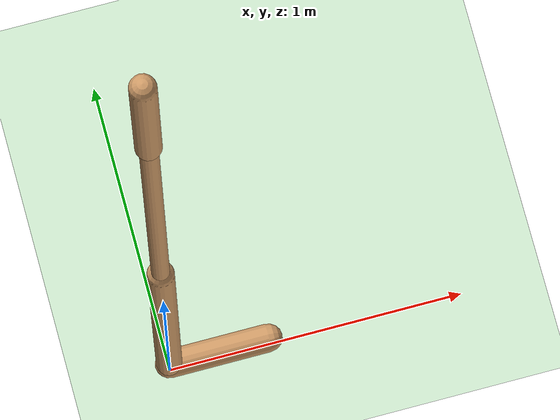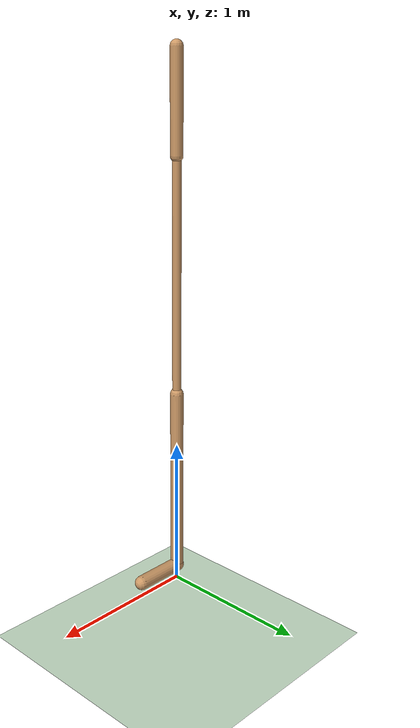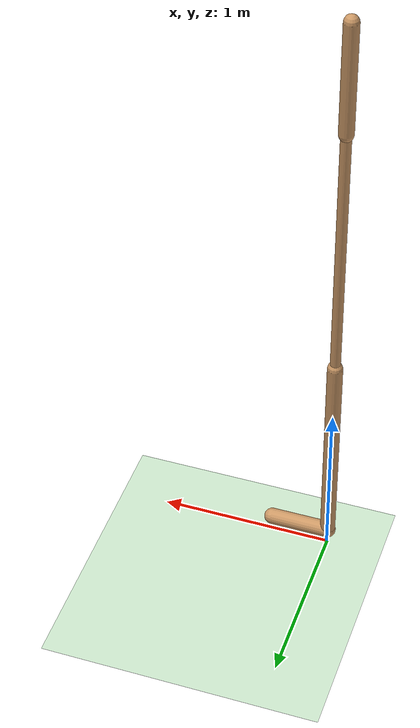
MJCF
<mujoco model="walker2d">
  <compiler angle="degree" inertiafromgeom="true" />
  <default>
    <joint armature="0.01" damping=".1" limited="true" />
    <geom conaffinity="0" condim="3" contype="1" density="1000" friction=".7 .1 .1" rgba="0.8 0.6 .4 1" />
  </default>
  <option integrator="RK4" timestep="0.002" />
  <worldbody>
    <light cutoff="100" diffuse="1 1 1" dir="-0 0 -1.3" directional="true" exponent="1" pos="0 0 1.3" specular=".1 .1 .1" />
    <geom conaffinity="1" condim="3" name="floor" pos="0 0 0" rgba="0.8 0.9 0.8 1" size="40 40 40" type="plane" material="MatPlane" />
    <body name="torso" pos="0 0 3.2203129887580872">
      <camera name="track" mode="trackcom" pos="0 -5 -1.25" xyaxes="1 0 0 0 0 1" />
      <joint armature="0" axis="1 0 0" damping="0" limited="false" name="rootx" pos="0 0 -1.25" stiffness="0" type="slide" />
      <joint armature="0" axis="0 0 1" damping="0" limited="false" name="rootz" pos="0 0 -1.25" ref="1.25" stiffness="0" type="slide" />
      <joint armature="0" axis="0 1 0" damping="0" limited="false" name="rooty" pos="0 0 0" stiffness="0" type="hinge" />
      <geom friction="0.9" name="torso_geom" size="0.04061535745859146 0.31593722105026245" type="capsule" />
      <body name="thigh" pos="0 0 -0.31593722105026245">
        <joint axis="0 -1 0" name="thigh_joint" pos="0 0 0" range="-150 0" type="hinge" />
        <site name="torso_thigh_site" pos="0 0 0" size="0.01" type="sphere" rgba="1 0 0 0.5" />
        <geom friction="0.9" pos="0 0 -0.7682355642318726" name="thigh_geom" size="0.02936618961393833 0.7682355642318726" type="capsule" />
        <body name="leg" pos="0 0 -2.170423448085785">
          <joint axis="0 -1 0" name="leg_joint" pos="0 0 0.6339523196220398" range="-150 0" type="hinge" />
          <site name="thigh_leg_site" pos="0 0 0.25" size="0.01" type="sphere" rgba="1 0 0 0.5" />
          <geom friction="0.9" name="leg_geom" size="0.04366204887628555 0.6339523196220398" type="capsule" />
          <body name="foot" pos="0.33789724111557007 0 -0.7339523196220398">
            <joint axis="0 -1 0" name="foot_joint" pos="-0.33789724111557007 0 0.1" range="-45 45" type="hinge" />
            <site name="leg_foot_site" pos="-0.2 0 0.1" size="0.01" type="sphere" rgba="1 0 0 0.5" />
            <geom friction="0.9" pos="-0.16894862055778503 0 0.1" quat="0.70710678118654757 0 -0.70710678118654746 0" name="foot_geom" size="0.04757080227136612 0.16894862055778503" type="capsule" />
          </body>
        </body>
      </body>

      <body name="thigh_left" pos="0 0 -0.31593722105026245">
        <joint axis="0 -1 0" name="thigh_left_joint" pos="0 0 0" range="-150 0" type="hinge" />
        <site name="torso_thigh_left_site" pos="0 0 0" size="0.01" type="sphere" rgba="1 0 0 0.5" />
        <geom friction="0.9" name="thigh_left_geom" rgba=".7 .3 .6 1" size="0.02936618961393833 0.7682355642318726" pos="0 0 -0.7682355642318726" type="capsule" />
        <body name="leg_left" pos="0 0 -2.170423448085785">
          <joint axis="0 -1 0" name="leg_left_joint" pos="0 0 0.6339523196220398" range="-150 0" type="hinge" />
          <site name="thigh_leg_left_site" pos="0 0 0.25" size="0.01" type="sphere" rgba="1 0 0 0.5" />
          <geom friction="0.9" name="leg_left_geom" rgba=".7 .3 .6 1" size="0.04366204887628555 0.6339523196220398" type="capsule" />
          <body name="foot_left" pos="0.33789724111557007 0 -0.7339523196220398">
            <joint axis="0 -1 0" name="foot_left_joint" pos="-0.33789724111557007 0 0.1" range="-45 45" type="hinge" />
            <site name="leg_foot_left_site" pos="-0.2 0 0.1" size="0.01" type="sphere" rgba="1 0 0 0.5" />
            <geom friction="1.9" name="foot_left_geom" rgba=".7 .3 .6 1" size="0.04757080227136612 0.16894862055778503" pos="-0.16894862055778503 0 0.1" type="capsule" quat="0.70710678118654757 0 -0.70710678118654746 0" />
          </body>
        </body>
      </body>
    </body>
  </worldbody>
  <actuator>

    <motor ctrllimited="true" ctrlrange="-1.0 1.0" gear="117.77878742229247" joint="thigh_joint" />
    <motor ctrllimited="true" ctrlrange="-1.0 1.0" gear="302.1376359995936" joint="leg_joint" />
    <motor ctrllimited="true" ctrlrange="-1.0 1.0" gear="106.20209915111747" joint="foot_joint" />
    <motor ctrllimited="true" ctrlrange="-1.0 1.0" gear="117.77878742229247" joint="thigh_left_joint" />
    <motor ctrllimited="true" ctrlrange="-1.0 1.0" gear="302.1376359995936" joint="leg_left_joint" />
    <motor ctrllimited="true" ctrlrange="-1.0 1.0" gear="106.20209915111747" joint="foot_left_joint" />

  </actuator>
    <asset>
        <texture type="skybox" builtin="gradient" rgb1=".4 .5 .6" rgb2="0 0 0" width="100" height="100" />
        <texture builtin="flat" height="1278" mark="cross" markrgb="1 1 1" name="texgeom" random="0.01" rgb1="0.8 0.6 0.4" rgb2="0.8 0.6 0.4" type="cube" width="127" />
        <texture builtin="checker" height="100" name="texplane" rgb1="0 0 0" rgb2="0.8 0.8 0.8" type="2d" width="100" />
        <material name="MatPlane" reflectance="0.5" shininess="1" specular="1" texrepeat="60 60" texture="texplane" />
        <material name="geom" texture="texgeom" texuniform="true" />
    </asset>

  <sensor>
    <force site="torso_thigh_site" name="torso_thigh_sensor" />
    <force site="thigh_leg_site" name="thigh_leg_sensor" />
    <force site="leg_foot_site" name="leg_foot_sensor" />
    <force site="torso_thigh_left_site" name="torso_thigh_left_sensor" />
    <force site="thigh_leg_left_site" name="thigh_leg_left_sensor" />
    <force site="leg_foot_left_site" name="leg_foot_left_sensor" />
  </sensor>
</mujoco>
